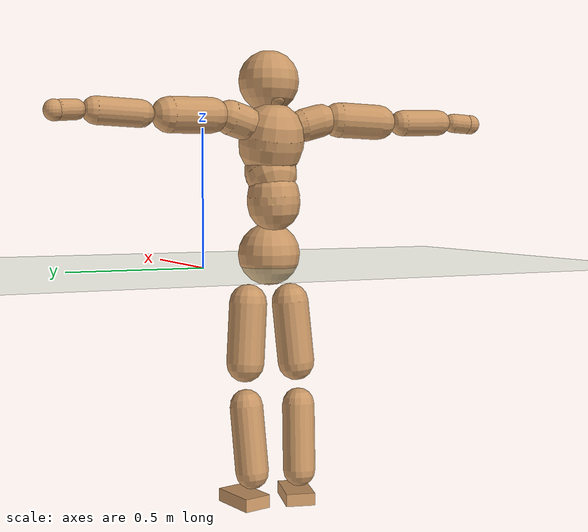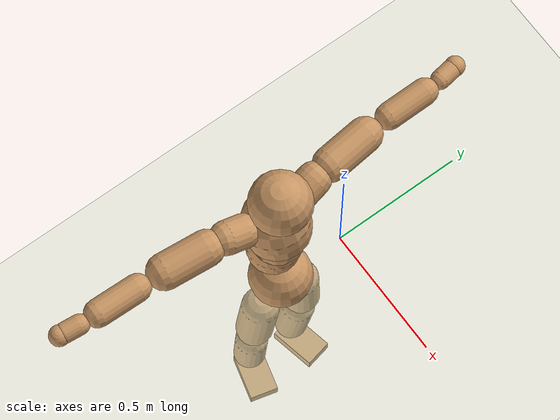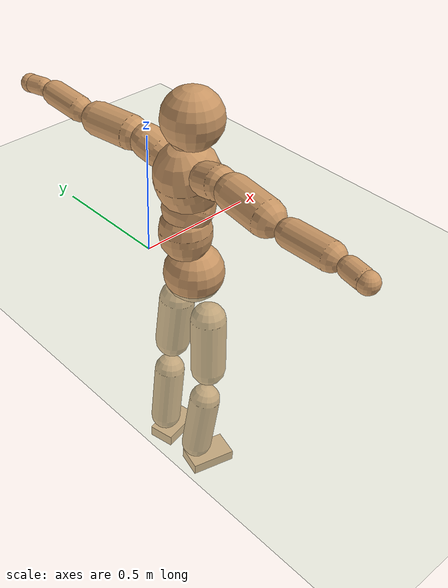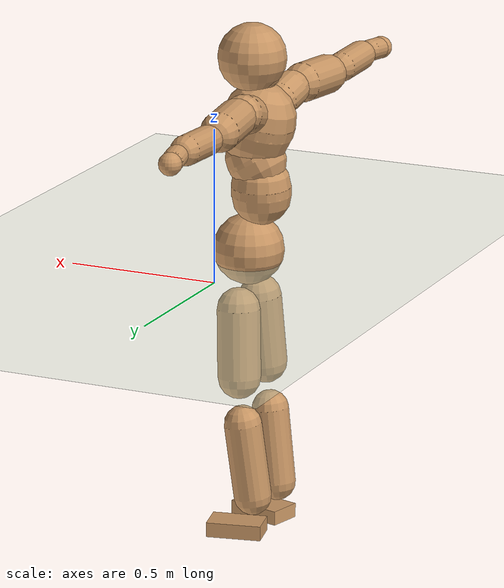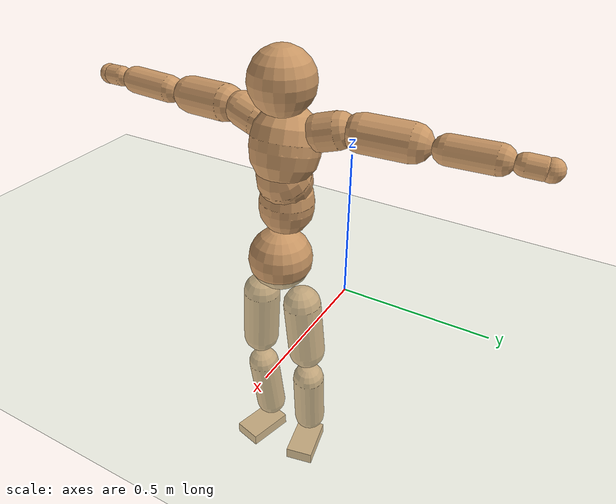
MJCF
<mujoco model="humanoid">
  <compiler coordinate="local"/>
  <default>
    <joint damping="0.0" armature="0.01" stiffness="0.0" limited="true"/>
    <geom conaffinity="1" condim="3" contype="7" margin="0.001" rgba="0.8 0.6 .4 1"/>
  </default>
  <asset>
    <texture type="skybox" builtin="gradient" rgb1=".4 .5 .6" rgb2="0 0 0" width="100" height="100"/>
    <texture builtin="flat" height="1278" mark="cross" markrgb="1 1 1" name="texgeom" random="0.01" rgb1="0.8 0.6 0.4" rgb2="0.8 0.6 0.4" type="cube" width="127"/>
    <texture builtin="checker" height="100" name="texplane" rgb1="0 0 0" rgb2="0.8 0.8 0.8" type="2d" width="100"/>
    <material name="MatPlane" reflectance="0.5" shininess="1" specular="1" texrepeat="60 60" texture="texplane"/>
    <material name="geom" texture="texgeom" texuniform="true"/>
  </asset>
  <worldbody>
    <light cutoff="100" diffuse="1 1 1" dir="-0 0 -1.3" directional="true" exponent="1" pos="0 0 1.3" specular=".1 .1 .1"/>
    <geom conaffinity="1" condim="3" name="floor" pos="0 0 0" rgba="0.8 0.9 0.8 1" size="100 100 .2" type="plane" material="MatPlane"/>
    <body name="Pelvis" pos="-0.0011 -0.2591 0.0448">
      <freejoint name="Pelvis"/>
      <geom type="sphere" contype="1" conaffinity="1" density="500" size="0.1155" pos="0.0000 0.0000 0.0000" name="Pelvis"/>
      <body name="L_Hip" pos="-0.0005 0.0813 -0.1039">
        <joint name="L_Hip_x" type="hinge" pos="0 0 0" axis="1 0 0" stiffness="800" damping="80" armature="0.02" range="-180.0000 180.0000"/>
        <joint name="L_Hip_y" type="hinge" pos="0 0 0" axis="0 1 0" stiffness="800" damping="80" armature="0.02" range="-180.0000 180.0000"/>
        <joint name="L_Hip_z" type="hinge" pos="0 0 0" axis="0 0 1" stiffness="800" damping="80" armature="0.02" range="-180.0000 180.0000"/>
        <geom type="capsule" contype="1" conaffinity="1" density="500" fromto="-0.0034 0.0054 -0.0745 -0.0134 0.0215 -0.2978" size="0.0698" name="L_Hip"/>
        <body name="L_Knee" pos="-0.0168 0.0268 -0.3723">
          <joint name="L_Knee_x" type="hinge" pos="0 0 0" axis="1 0 0" stiffness="800" damping="80" armature="0.02" range="-180.0000 180.0000"/>
          <joint name="L_Knee_y" type="hinge" pos="0 0 0" axis="0 1 0" stiffness="800" damping="80" armature="0.02" range="-180.0000 180.0000"/>
          <joint name="L_Knee_z" type="hinge" pos="0 0 0" axis="0 0 1" stiffness="800" damping="80" armature="0.02" range="-180.0000 180.0000"/>
          <geom type="capsule" contype="1" conaffinity="1" density="500" fromto="-0.0104 -0.0031 -0.0815 -0.0415 -0.0126 -0.3258" size="0.0614" name="L_Knee"/>
          <body name="L_Ankle" pos="-0.0518 -0.0157 -0.4073">
            <joint name="L_Ankle_x" type="hinge" pos="0 0 0" axis="1 0 0" stiffness="800" damping="80" armature="0.02" range="-180.0000 180.0000"/>
            <joint name="L_Ankle_y" type="hinge" pos="0 0 0" axis="0 1 0" stiffness="800" damping="80" armature="0.02" range="-180.0000 180.0000"/>
            <joint name="L_Ankle_z" type="hinge" pos="0 0 0" axis="0 0 1" stiffness="800" damping="80" armature="0.02" range="-180.0000 180.0000"/>
            <geom type="box" contype="1" conaffinity="1" density="500" pos="0.0627 0.0133 -0.0286" size="0.0895 0.0529 0.0242" quat="0.9945 0.0000 0.0000 0.1045" name="L_Ankle"/>
            <body name="L_Toe" pos="0.1255 0.0267 -0.0571">
              <joint name="L_Toe_x" type="hinge" pos="0 0 0" axis="1 0 0" stiffness="500" damping="50" armature="0.02" range="-180.0000 180.0000"/>
              <joint name="L_Toe_y" type="hinge" pos="0 0 0" axis="0 1 0" stiffness="500" damping="50" armature="0.02" range="-180.0000 180.0000"/>
              <joint name="L_Toe_z" type="hinge" pos="0 0 0" axis="0 0 1" stiffness="500" damping="50" armature="0.02" range="-180.0000 180.0000"/>
              <geom type="box" contype="1" conaffinity="1" density="500" pos="0.0000 0.0000 0.0287" size="0.0011 0.0026 0.0012" quat="0.9939 0.0000 0.0000 0.1104" name="L_Toe"/>
            </body>
          </body>
        </body>
      </body>
      <body name="R_Hip" pos="0.003 -0.0797 -0.1038">
        <joint name="R_Hip_x" type="hinge" pos="0 0 0" axis="1 0 0" stiffness="800" damping="80" armature="0.02" range="-180.0000 180.0000"/>
        <joint name="R_Hip_y" type="hinge" pos="0 0 0" axis="0 1 0" stiffness="800" damping="80" armature="0.02" range="-180.0000 180.0000"/>
        <joint name="R_Hip_z" type="hinge" pos="0 0 0" axis="0 0 1" stiffness="800" damping="80" armature="0.02" range="-180.0000 180.0000"/>
        <geom type="capsule" contype="1" conaffinity="1" density="500" fromto="-0.0042 -0.0065 -0.0766 -0.0168 -0.0259 -0.3065" size="0.0689" name="R_Hip"/>
        <body name="R_Knee" pos="-0.021 -0.0323 -0.3831">
          <joint name="R_Knee_x" type="hinge" pos="0 0 0" axis="1 0 0" stiffness="800" damping="80" armature="0.02" range="-180.0000 180.0000"/>
          <joint name="R_Knee_y" type="hinge" pos="0 0 0" axis="0 1 0" stiffness="800" damping="80" armature="0.02" range="-180.0000 180.0000"/>
          <joint name="R_Knee_z" type="hinge" pos="0 0 0" axis="0 0 1" stiffness="800" damping="80" armature="0.02" range="-180.0000 180.0000"/>
          <geom type="capsule" contype="1" conaffinity="1" density="500" fromto="-0.0101 0.0035 -0.0821 -0.0406 0.0139 -0.3282" size="0.0609" name="R_Knee"/>
          <body name="R_Ankle" pos="-0.0507 0.0174 -0.4103">
            <joint name="R_Ankle_x" type="hinge" pos="0 0 0" axis="1 0 0" stiffness="800" damping="80" armature="0.02" range="-180.0000 180.0000"/>
            <joint name="R_Ankle_y" type="hinge" pos="0 0 0" axis="0 1 0" stiffness="800" damping="80" armature="0.02" range="-180.0000 180.0000"/>
            <joint name="R_Ankle_z" type="hinge" pos="0 0 0" axis="0 0 1" stiffness="800" damping="80" armature="0.02" range="-180.0000 180.0000"/>
            <geom type="box" contype="1" conaffinity="1" density="500" pos="0.0651 -0.0167 -0.0251" size="0.0905 0.0546 0.0234" quat="0.9921 0.0000 0.0000 -0.1254" name="R_Ankle"/>
            <body name="R_Toe" pos="0.1302 -0.0335 -0.0502">
              <joint name="R_Toe_x" type="hinge" pos="0 0 0" axis="1 0 0" stiffness="500" damping="50" armature="0.02" range="-180.0000 180.0000"/>
              <joint name="R_Toe_y" type="hinge" pos="0 0 0" axis="0 1 0" stiffness="500" damping="50" armature="0.02" range="-180.0000 180.0000"/>
              <joint name="R_Toe_z" type="hinge" pos="0 0 0" axis="0 0 1" stiffness="500" damping="50" armature="0.02" range="-180.0000 180.0000"/>
              <geom type="box" contype="1" conaffinity="1" density="500" pos="0.0000 0.0000 0.0268" size="0.0012 0.0027 0.0013" quat="0.9932 0.0000 0.0000 -0.1165" name="R_Toe"/>
            </body>
          </body>
        </body>
      </body>
      <body name="Torso" pos="-0.0425 -0.0022 0.1266">
        <joint name="Torso_x" type="hinge" pos="0 0 0" axis="1 0 0" stiffness="1000" damping="100" armature="0.02" range="-180.0000 180.0000"/>
        <joint name="Torso_y" type="hinge" pos="0 0 0" axis="0 1 0" stiffness="1000" damping="100" armature="0.02" range="-180.0000 180.0000"/>
        <joint name="Torso_z" type="hinge" pos="0 0 0" axis="0 0 1" stiffness="1000" damping="100" armature="0.02" range="-180.0000 180.0000"/>
        <geom type="capsule" contype="1" conaffinity="1" density="500" fromto="-0.0007 0.0038 0.0864 -0.0005 0.0025 0.0576" size="0.0972" name="Torso"/>
        <body name="Spine" pos="-0.0012 0.0063 0.144">
          <joint name="Spine_x" type="hinge" pos="0 0 0" axis="1 0 0" stiffness="1000" damping="100" armature="0.02" range="-180.0000 180.0000"/>
          <joint name="Spine_y" type="hinge" pos="0 0 0" axis="0 1 0" stiffness="1000" damping="100" armature="0.02" range="-180.0000 180.0000"/>
          <joint name="Spine_z" type="hinge" pos="0 0 0" axis="0 0 1" stiffness="1000" damping="100" armature="0.02" range="-180.0000 180.0000"/>
          <geom type="capsule" contype="1" conaffinity="1" density="500" fromto="0.0216 0.0005 0.0362 0.0144 0.0004 0.0241" size="0.0956" name="Spine"/>
          <body name="Chest" pos="0.036 0.0009 0.0604">
            <joint name="Chest_x" type="hinge" pos="0 0 0" axis="1 0 0" stiffness="1000" damping="100" armature="0.02" range="-180.0000 180.0000"/>
            <joint name="Chest_y" type="hinge" pos="0 0 0" axis="0 1 0" stiffness="1000" damping="100" armature="0.02" range="-180.0000 180.0000"/>
            <joint name="Chest_z" type="hinge" pos="0 0 0" axis="0 0 1" stiffness="1000" damping="100" armature="0.02" range="-180.0000 180.0000"/>
            <geom type="capsule" contype="1" conaffinity="1" density="500" fromto="-0.0294 -0.0008 0.1028 -0.0196 -0.0005 0.0686" size="0.1197" name="Chest"/>
            <body name="Neck" pos="-0.059 -0.0012 0.2387">
              <joint name="Neck_x" type="hinge" pos="0 0 0" axis="1 0 0" stiffness="500" damping="50" armature="0.02" range="-180.0000 180.0000"/>
              <joint name="Neck_y" type="hinge" pos="0 0 0" axis="0 1 0" stiffness="500" damping="50" armature="0.02" range="-180.0000 180.0000"/>
              <joint name="Neck_z" type="hinge" pos="0 0 0" axis="0 0 1" stiffness="500" damping="50" armature="0.02" range="-180.0000 180.0000"/>
              <geom type="capsule" contype="1" conaffinity="1" density="500" fromto="0.0106 0.0006 0.0124 0.0424 0.0024 0.0496" size="0.0495" name="Neck"/>
              <body name="Head" pos="0.053 0.003 0.062">
                <joint name="Head_x" type="hinge" pos="0 0 0" axis="1 0 0" stiffness="500" damping="50" armature="0.02" range="-180.0000 180.0000"/>
                <joint name="Head_y" type="hinge" pos="0 0 0" axis="0 1 0" stiffness="500" damping="50" armature="0.02" range="-180.0000 180.0000"/>
                <joint name="Head_z" type="hinge" pos="0 0 0" axis="0 0 1" stiffness="500" damping="50" armature="0.02" range="-180.0000 180.0000"/>
                <geom type="sphere" contype="1" conaffinity="1" density="500" size="0.1110" pos="0.0000 0.0000 0.0000" name="Head"/>
              </body>
            </body>
            <body name="L_Thorax" pos="-0.0419 0.0935 0.1392">
              <joint name="L_Thorax_x" type="hinge" pos="0 0 0" axis="1 0 0" stiffness="500" damping="50" armature="0.02" range="-180.0000 180.0000"/>
              <joint name="L_Thorax_y" type="hinge" pos="0 0 0" axis="0 1 0" stiffness="500" damping="50" armature="0.02" range="-180.0000 180.0000"/>
              <joint name="L_Thorax_z" type="hinge" pos="0 0 0" axis="0 0 1" stiffness="500" damping="50" armature="0.02" range="-180.0000 180.0000"/>
              <geom type="capsule" contype="1" conaffinity="1" density="500" fromto="-0.0031 0.0205 0.0056 -0.0125 0.0818 0.0225" size="0.0616" name="L_Thorax"/>
              <body name="L_Shoulder" pos="-0.0156 0.1023 0.0282">
                <joint name="L_Shoulder_x" type="hinge" pos="0 0 0" axis="1 0 0" stiffness="500" damping="50" armature="0.02" range="-720.0000 720.0000"/>
                <joint name="L_Shoulder_y" type="hinge" pos="0 0 0" axis="0 1 0" stiffness="500" damping="50" armature="0.02" range="-720.0000 720.0000"/>
                <joint name="L_Shoulder_z" type="hinge" pos="0 0 0" axis="0 0 1" stiffness="500" damping="50" armature="0.02" range="-720.0000 720.0000"/>
                <geom type="capsule" contype="1" conaffinity="1" density="500" fromto="-0.0063 0.0533 -0.0015 -0.0253 0.2131 -0.0060" size="0.0631" name="L_Shoulder"/>
                <body name="L_Elbow" pos="-0.0316 0.2664 -0.0075">
                  <joint name="L_Elbow_x" type="hinge" pos="0 0 0" axis="1 0 0" stiffness="500" damping="50" armature="0.02" range="-720.0000 720.0000"/>
                  <joint name="L_Elbow_y" type="hinge" pos="0 0 0" axis="0 1 0" stiffness="500" damping="50" armature="0.02" range="-720.0000 720.0000"/>
                  <joint name="L_Elbow_z" type="hinge" pos="0 0 0" axis="0 0 1" stiffness="500" damping="50" armature="0.02" range="-720.0000 720.0000"/>
                  <geom type="capsule" contype="1" conaffinity="1" density="500" fromto="0.0001 0.0507 0.0017 0.0005 0.2029 0.0070" size="0.0478" name="L_Elbow"/>
                  <body name="L_Wrist" pos="0.0006 0.2536 0.0087">
                    <joint name="L_Wrist_x" type="hinge" pos="0 0 0" axis="1 0 0" stiffness="300" damping="30" armature="0.02" range="-180.0000 180.0000"/>
                    <joint name="L_Wrist_y" type="hinge" pos="0 0 0" axis="0 1 0" stiffness="300" damping="30" armature="0.02" range="-180.0000 180.0000"/>
                    <joint name="L_Wrist_z" type="hinge" pos="0 0 0" axis="0 0 1" stiffness="300" damping="30" armature="0.02" range="-180.0000 180.0000"/>
                    <geom type="capsule" contype="1" conaffinity="1" density="500" fromto="-0.0032 0.0180 -0.0014 -0.0130 0.0720 -0.0057" size="0.035" name="L_Wrist"/>
                    <body name="L_Hand" pos="-0.0162 0.0901 -0.0071">
                      <joint name="L_Hand_x" type="hinge" pos="0 0 0" axis="1 0 0" stiffness="300" damping="30" armature="0.02" range="-180.0000 180.0000"/>
                      <joint name="L_Hand_y" type="hinge" pos="0 0 0" axis="0 1 0" stiffness="300" damping="30" armature="0.02" range="-180.0000 180.0000"/>
                      <joint name="L_Hand_z" type="hinge" pos="0 0 0" axis="0 0 1" stiffness="300" damping="30" armature="0.02" range="-180.0000 180.0000"/>
                      <geom type="sphere" contype="1" conaffinity="1" density="500" size="0.0362" pos="0.0000 0.0000 0.0000" name="L_Hand"/>
                    </body>
                  </body>
                </body>
              </body>
            </body>
            <body name="R_Thorax" pos="-0.0463 -0.0962 0.1362">
              <joint name="R_Thorax_x" type="hinge" pos="0 0 0" axis="1 0 0" stiffness="500" damping="50" armature="0.02" range="-180.0000 180.0000"/>
              <joint name="R_Thorax_y" type="hinge" pos="0 0 0" axis="0 1 0" stiffness="500" damping="50" armature="0.02" range="-180.0000 180.0000"/>
              <joint name="R_Thorax_z" type="hinge" pos="0 0 0" axis="0 0 1" stiffness="500" damping="50" armature="0.02" range="-180.0000 180.0000"/>
              <geom type="capsule" contype="1" conaffinity="1" density="500" fromto="-0.0026 -0.0218 0.0062 -0.0103 -0.0870 0.0249" size="0.0606" name="R_Thorax"/>
              <body name="R_Shoulder" pos="-0.0129 -0.1088 0.0311">
                <joint name="R_Shoulder_x" type="hinge" pos="0 0 0" axis="1 0 0" stiffness="500" damping="50" armature="0.02" range="-720.0000 720.0000"/>
                <joint name="R_Shoulder_y" type="hinge" pos="0 0 0" axis="0 1 0" stiffness="500" damping="50" armature="0.02" range="-720.0000 720.0000"/>
                <joint name="R_Shoulder_z" type="hinge" pos="0 0 0" axis="0 0 1" stiffness="500" damping="50" armature="0.02" range="-720.0000 720.0000"/>
                <geom type="capsule" contype="1" conaffinity="1" density="500" fromto="-0.0054 -0.0524 -0.0019 -0.0218 -0.2097 -0.0074" size="0.0645" name="R_Shoulder"/>
                <body name="R_Elbow" pos="-0.0272 -0.2622 -0.0093">
                  <joint name="R_Elbow_x" type="hinge" pos="0 0 0" axis="1 0 0" stiffness="500" damping="50" armature="0.02" range="-720.0000 720.0000"/>
                  <joint name="R_Elbow_y" type="hinge" pos="0 0 0" axis="0 1 0" stiffness="500" damping="50" armature="0.02" range="-720.0000 720.0000"/>
                  <joint name="R_Elbow_z" type="hinge" pos="0 0 0" axis="0 0 1" stiffness="500" damping="50" armature="0.02" range="-720.0000 720.0000"/>
                  <geom type="capsule" contype="1" conaffinity="1" density="500" fromto="-0.0008 -0.0520 0.0019 -0.0032 -0.2080 0.0075" size="0.0488" name="R_Elbow"/>
                  <body name="R_Wrist" pos="-0.004 -0.2601 0.0094">
                    <joint name="R_Wrist_x" type="hinge" pos="0 0 0" axis="1 0 0" stiffness="300" damping="30" armature="0.02" range="-180.0000 180.0000"/>
                    <joint name="R_Wrist_y" type="hinge" pos="0 0 0" axis="0 1 0" stiffness="300" damping="30" armature="0.02" range="-180.0000 180.0000"/>
                    <joint name="R_Wrist_z" type="hinge" pos="0 0 0" axis="0 0 1" stiffness="300" damping="30" armature="0.02" range="-180.0000 180.0000"/>
                    <geom type="capsule" contype="1" conaffinity="1" density="500" fromto="-0.0022 -0.0183 -0.0011 -0.0087 -0.0732 -0.0045" size="0.0363" name="R_Wrist"/>
                    <body name="R_Hand" pos="-0.0109 -0.0915 -0.0056">
                      <joint name="R_Hand_x" type="hinge" pos="0 0 0" axis="1 0 0" stiffness="300" damping="30" armature="0.02" range="-180.0000 180.0000"/>
                      <joint name="R_Hand_y" type="hinge" pos="0 0 0" axis="0 1 0" stiffness="300" damping="30" armature="0.02" range="-180.0000 180.0000"/>
                      <joint name="R_Hand_z" type="hinge" pos="0 0 0" axis="0 0 1" stiffness="300" damping="30" armature="0.02" range="-180.0000 180.0000"/>
                      <geom type="sphere" contype="1" conaffinity="1" density="500" size="0.0370" pos="0.0000 0.0000 0.0000" name="R_Hand"/>
                    </body>
                  </body>
                </body>
              </body>
            </body>
          </body>
        </body>
      </body>
    </body>
  </worldbody>
  <actuator>
    <motor name="L_Hip_x" joint="L_Hip_x" gear="500"/>
    <motor name="L_Hip_y" joint="L_Hip_y" gear="500"/>
    <motor name="L_Hip_z" joint="L_Hip_z" gear="500"/>
    <motor name="L_Knee_x" joint="L_Knee_x" gear="500"/>
    <motor name="L_Knee_y" joint="L_Knee_y" gear="500"/>
    <motor name="L_Knee_z" joint="L_Knee_z" gear="500"/>
    <motor name="L_Ankle_x" joint="L_Ankle_x" gear="500"/>
    <motor name="L_Ankle_y" joint="L_Ankle_y" gear="500"/>
    <motor name="L_Ankle_z" joint="L_Ankle_z" gear="500"/>
    <motor name="L_Toe_x" joint="L_Toe_x" gear="500"/>
    <motor name="L_Toe_y" joint="L_Toe_y" gear="500"/>
    <motor name="L_Toe_z" joint="L_Toe_z" gear="500"/>
    <motor name="R_Hip_x" joint="R_Hip_x" gear="500"/>
    <motor name="R_Hip_y" joint="R_Hip_y" gear="500"/>
    <motor name="R_Hip_z" joint="R_Hip_z" gear="500"/>
    <motor name="R_Knee_x" joint="R_Knee_x" gear="500"/>
    <motor name="R_Knee_y" joint="R_Knee_y" gear="500"/>
    <motor name="R_Knee_z" joint="R_Knee_z" gear="500"/>
    <motor name="R_Ankle_x" joint="R_Ankle_x" gear="500"/>
    <motor name="R_Ankle_y" joint="R_Ankle_y" gear="500"/>
    <motor name="R_Ankle_z" joint="R_Ankle_z" gear="500"/>
    <motor name="R_Toe_x" joint="R_Toe_x" gear="500"/>
    <motor name="R_Toe_y" joint="R_Toe_y" gear="500"/>
    <motor name="R_Toe_z" joint="R_Toe_z" gear="500"/>
    <motor name="Torso_x" joint="Torso_x" gear="500"/>
    <motor name="Torso_y" joint="Torso_y" gear="500"/>
    <motor name="Torso_z" joint="Torso_z" gear="500"/>
    <motor name="Spine_x" joint="Spine_x" gear="500"/>
    <motor name="Spine_y" joint="Spine_y" gear="500"/>
    <motor name="Spine_z" joint="Spine_z" gear="500"/>
    <motor name="Chest_x" joint="Chest_x" gear="500"/>
    <motor name="Chest_y" joint="Chest_y" gear="500"/>
    <motor name="Chest_z" joint="Chest_z" gear="500"/>
    <motor name="Neck_x" joint="Neck_x" gear="500"/>
    <motor name="Neck_y" joint="Neck_y" gear="500"/>
    <motor name="Neck_z" joint="Neck_z" gear="500"/>
    <motor name="Head_x" joint="Head_x" gear="500"/>
    <motor name="Head_y" joint="Head_y" gear="500"/>
    <motor name="Head_z" joint="Head_z" gear="500"/>
    <motor name="L_Thorax_x" joint="L_Thorax_x" gear="500"/>
    <motor name="L_Thorax_y" joint="L_Thorax_y" gear="500"/>
    <motor name="L_Thorax_z" joint="L_Thorax_z" gear="500"/>
    <motor name="L_Shoulder_x" joint="L_Shoulder_x" gear="500"/>
    <motor name="L_Shoulder_y" joint="L_Shoulder_y" gear="500"/>
    <motor name="L_Shoulder_z" joint="L_Shoulder_z" gear="500"/>
    <motor name="L_Elbow_x" joint="L_Elbow_x" gear="500"/>
    <motor name="L_Elbow_y" joint="L_Elbow_y" gear="500"/>
    <motor name="L_Elbow_z" joint="L_Elbow_z" gear="500"/>
    <motor name="L_Wrist_x" joint="L_Wrist_x" gear="500"/>
    <motor name="L_Wrist_y" joint="L_Wrist_y" gear="500"/>
    <motor name="L_Wrist_z" joint="L_Wrist_z" gear="500"/>
    <motor name="L_Hand_x" joint="L_Hand_x" gear="500"/>
    <motor name="L_Hand_y" joint="L_Hand_y" gear="500"/>
    <motor name="L_Hand_z" joint="L_Hand_z" gear="500"/>
    <motor name="R_Thorax_x" joint="R_Thorax_x" gear="500"/>
    <motor name="R_Thorax_y" joint="R_Thorax_y" gear="500"/>
    <motor name="R_Thorax_z" joint="R_Thorax_z" gear="500"/>
    <motor name="R_Shoulder_x" joint="R_Shoulder_x" gear="500"/>
    <motor name="R_Shoulder_y" joint="R_Shoulder_y" gear="500"/>
    <motor name="R_Shoulder_z" joint="R_Shoulder_z" gear="500"/>
    <motor name="R_Elbow_x" joint="R_Elbow_x" gear="500"/>
    <motor name="R_Elbow_y" joint="R_Elbow_y" gear="500"/>
    <motor name="R_Elbow_z" joint="R_Elbow_z" gear="500"/>
    <motor name="R_Wrist_x" joint="R_Wrist_x" gear="500"/>
    <motor name="R_Wrist_y" joint="R_Wrist_y" gear="500"/>
    <motor name="R_Wrist_z" joint="R_Wrist_z" gear="500"/>
    <motor name="R_Hand_x" joint="R_Hand_x" gear="500"/>
    <motor name="R_Hand_y" joint="R_Hand_y" gear="500"/>
    <motor name="R_Hand_z" joint="R_Hand_z" gear="500"/>
  </actuator>
  <contact>
    <exclude body1="Torso" body2="Chest"/>
    <exclude body1="Head" body2="Chest"/>
    <exclude body1="R_Knee" body2="R_Toe"/>
    <exclude body1="R_Knee" body2="L_Ankle"/>
    <exclude body1="R_Knee" body2="L_Toe"/>
    <exclude body1="L_Knee" body2="L_Toe"/>
    <exclude body1="L_Knee" body2="R_Ankle"/>
    <exclude body1="L_Knee" body2="R_Toe"/>
    <exclude body1="L_Shoulder" body2="Chest"/>
    <exclude body1="R_Shoulder" body2="Chest"/>
  </contact>
  <sensor/>
  <size njmax="700" nconmax="700"/>
</mujoco>
